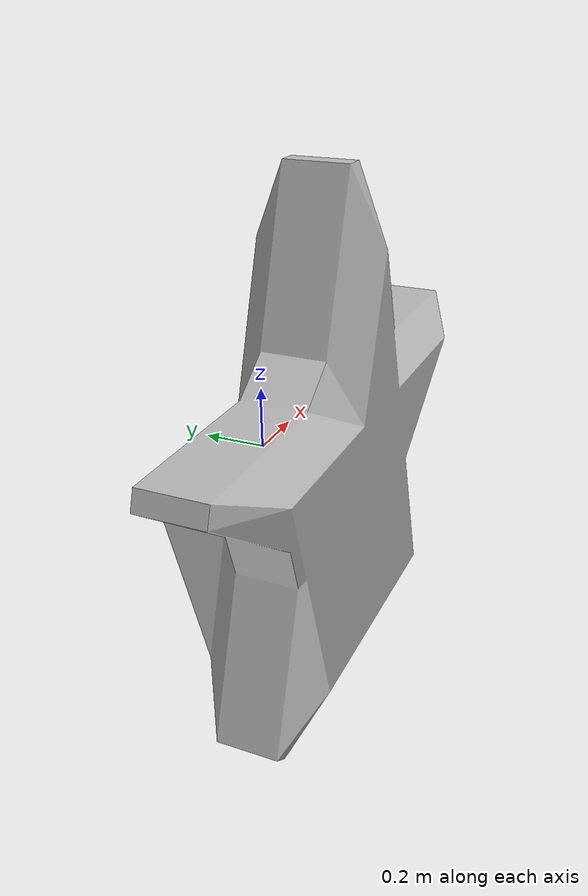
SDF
<?xml version="1.0"?>

<sdf version="1.10">

<model name="seastar">

  <static>true</static>

  <link name="seastar">

    <collision name="collision">

      <geometry>

        <box>

          <size>0.4 0.4 0.1</size>

        </box>

      </geometry>

    </collision>

    <visual name="visual">

      <geometry>

        <mesh>

          <uri>model://seastar/meshes/seastar.obj</uri>

          <scale>1 1 1</scale>

        </mesh>

      </geometry>

    </visual>

  </link>

</model>

</sdf>
